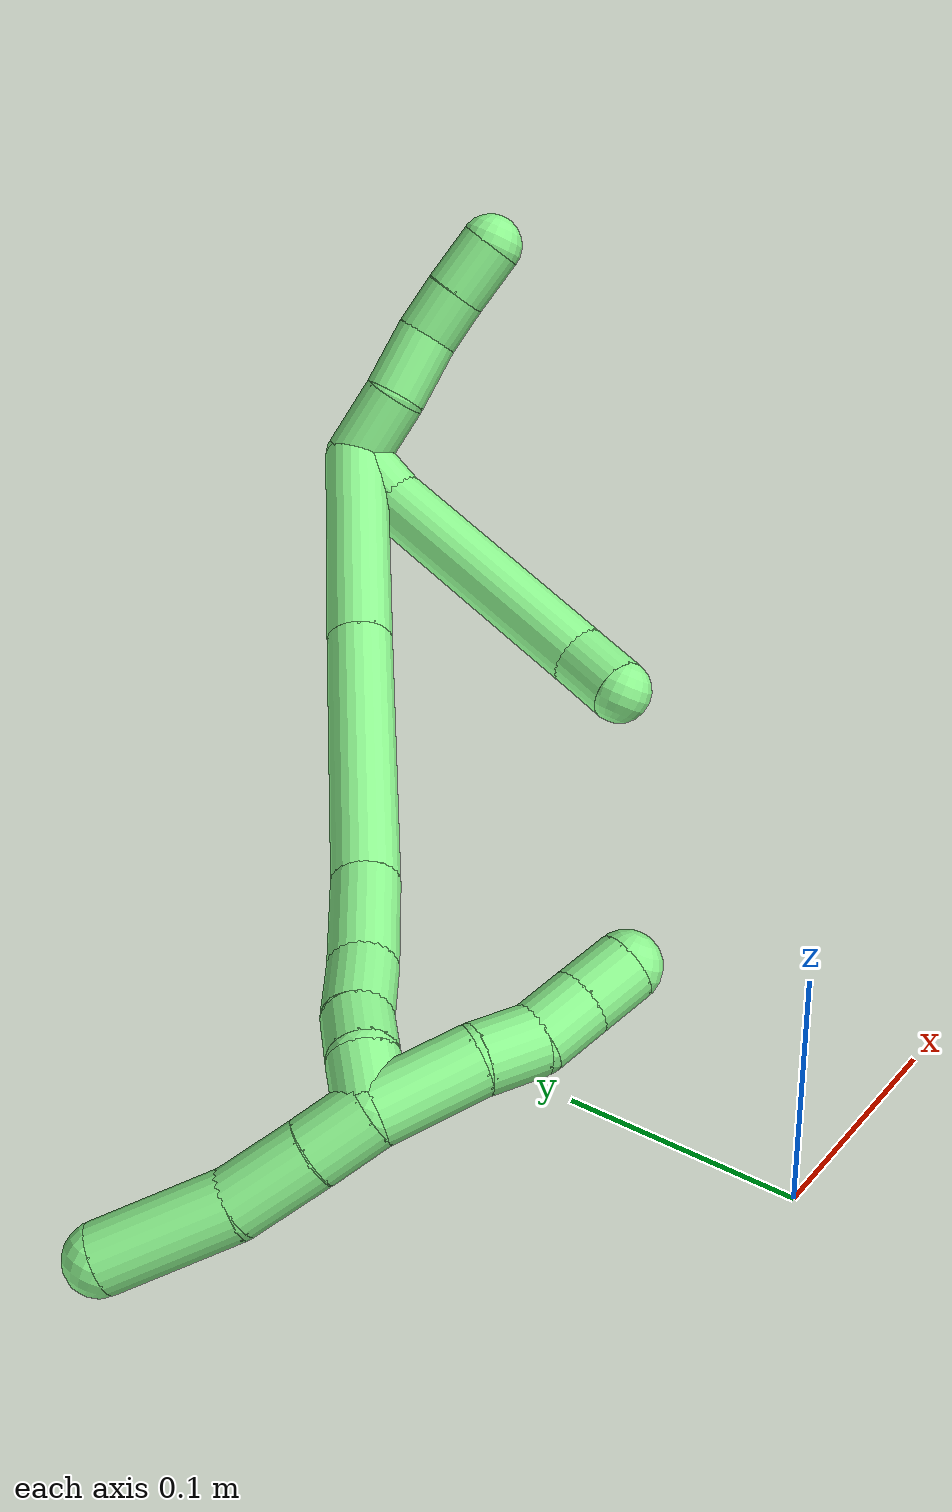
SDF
<sdf version="1.7">
 <world name="default">
  <model name="13">
   <static>0</static>
   <link name="13">
    <collision name="collision-cylinder-e_1_2_8">
     <pose>0.003134 -0.010795 -0.004811 1.98999 0.259227 0.396294</pose>
     <geometry><cylinder><radius>0.0125</radius><length>0.024454</length></cylinder></geometry>
     <surface>
      <friction><ode><mu>1.16</mu><mu2>1.16</mu2><slip1>0</slip1><slip2>0</slip2></ode></friction>
      <contact><ode><kp>1e+06</kp><kd>1</kd><max_vel>0</max_vel><min_depth>0.001</min_depth></ode></contact>
     </surface>
    </collision>
    <visual name="visual-cylinder-e_1_2_8">
     <pose>0.003134 -0.010795 -0.004811 1.98999 0.259227 0.396294</pose>
     <geometry><cylinder><radius>0.0125</radius><length>0.024454</length></cylinder></geometry>
     <material><ambient>0.564706 0.984314 0.572549 1</ambient></material>
    </visual>
    <collision name="collision-cylinder-e_2_8_9">
     <pose>0.015733 -0.069534 -0.021669 1.81699 0.18916 0.242111</pose>
     <geometry><cylinder><radius>0.0125</radius><length>0.100663</length></cylinder></geometry>
     <surface>
      <friction><ode><mu>1.16</mu><mu2>1.16</mu2><slip1>0</slip1><slip2>0</slip2></ode></friction>
      <contact><ode><kp>1e+06</kp><kd>1</kd><max_vel>0</max_vel><min_depth>0.001</min_depth></ode></contact>
     </surface>
    </collision>
    <visual name="visual-cylinder-e_2_8_9">
     <pose>0.015733 -0.069534 -0.021669 1.81699 0.18916 0.242111</pose>
     <geometry><cylinder><radius>0.0125</radius><length>0.100663</length></cylinder></geometry>
     <material><ambient>0.564706 0.984314 0.572549 1</ambient></material>
    </visual>
    <collision name="collision-cylinder-e_3_9_6">
     <pose>0.023905 -0.129644 -0.035969 1.75388 -0.104016 -0.124993</pose>
     <geometry><cylinder><radius>0.0125</radius><length>0.024882</length></cylinder></geometry>
     <surface>
      <friction><ode><mu>1.16</mu><mu2>1.16</mu2><slip1>0</slip1><slip2>0</slip2></ode></friction>
      <contact><ode><kp>1e+06</kp><kd>1</kd><max_vel>0</max_vel><min_depth>0.001</min_depth></ode></contact>
     </surface>
    </collision>
    <visual name="visual-cylinder-e_3_9_6">
     <pose>0.023905 -0.129644 -0.035969 1.75388 -0.104016 -0.124993</pose>
     <geometry><cylinder><radius>0.0125</radius><length>0.024882</length></cylinder></geometry>
     <material><ambient>0.564706 0.984314 0.572549 1</ambient></material>
    </visual>
    <collision name="collision-cylinder-e_1_2_10">
     <pose>0.000316 -0.002617 0.014171 0.182641 0.021891 0.002005</pose>
     <geometry><cylinder><radius>0.0125</radius><length>0.028829</length></cylinder></geometry>
     <surface>
      <friction><ode><mu>1.16</mu><mu2>1.16</mu2><slip1>0</slip1><slip2>0</slip2></ode></friction>
      <contact><ode><kp>1e+06</kp><kd>1</kd><max_vel>0</max_vel><min_depth>0.001</min_depth></ode></contact>
     </surface>
    </collision>
    <visual name="visual-cylinder-e_1_2_10">
     <pose>0.000316 -0.002617 0.014171 0.182641 0.021891 0.002005</pose>
     <geometry><cylinder><radius>0.0125</radius><length>0.028829</length></cylinder></geometry>
     <material><ambient>0.564706 0.984314 0.572549 1</ambient></material>
    </visual>
    <collision name="collision-cylinder-e_2_10_11">
     <pose>0.002662 -0.005194 0.041764 -0.003077 0.150171 -0.000231</pose>
     <geometry><cylinder><radius>0.0125</radius><length>0.027148</length></cylinder></geometry>
     <surface>
      <friction><ode><mu>1.16</mu><mu2>1.16</mu2><slip1>0</slip1><slip2>0</slip2></ode></friction>
      <contact><ode><kp>1e+06</kp><kd>1</kd><max_vel>0</max_vel><min_depth>0.001</min_depth></ode></contact>
     </surface>
    </collision>
    <visual name="visual-cylinder-e_2_10_11">
     <pose>0.002662 -0.005194 0.041764 -0.003077 0.150171 -0.000231</pose>
     <geometry><cylinder><radius>0.0125</radius><length>0.027148</length></cylinder></geometry>
     <material><ambient>0.564706 0.984314 0.572549 1</ambient></material>
    </visual>
    <collision name="collision-cylinder-e_3_11_12">
     <pose>0.00525 -0.007123 0.065199 0.194325 0.054535 0.005317</pose>
     <geometry><cylinder><radius>0.0125</radius><length>0.020442</length></cylinder></geometry>
     <surface>
      <friction><ode><mu>1.16</mu><mu2>1.16</mu2><slip1>0</slip1><slip2>0</slip2></ode></friction>
      <contact><ode><kp>1e+06</kp><kd>1</kd><max_vel>0</max_vel><min_depth>0.001</min_depth></ode></contact>
     </surface>
    </collision>
    <visual name="visual-cylinder-e_3_11_12">
     <pose>0.00525 -0.007123 0.065199 0.194325 0.054535 0.005317</pose>
     <geometry><cylinder><radius>0.0125</radius><length>0.020442</length></cylinder></geometry>
     <material><ambient>0.564706 0.984314 0.572549 1</ambient></material>
    </visual>
    <collision name="collision-cylinder-e_4_12_5">
     <pose>0.006797 -0.011704 0.086668 0.224009 0.084065 0.009461</pose>
     <geometry><cylinder><radius>0.0125</radius><length>0.023581</length></cylinder></geometry>
     <surface>
      <friction><ode><mu>1.16</mu><mu2>1.16</mu2><slip1>0</slip1><slip2>0</slip2></ode></friction>
      <contact><ode><kp>1e+06</kp><kd>1</kd><max_vel>0</max_vel><min_depth>0.001</min_depth></ode></contact>
     </surface>
    </collision>
    <visual name="visual-cylinder-e_4_12_5">
     <pose>0.006797 -0.011704 0.086668 0.224009 0.084065 0.009461</pose>
     <geometry><cylinder><radius>0.0125</radius><length>0.023581</length></cylinder></geometry>
     <material><ambient>0.564706 0.984314 0.572549 1</ambient></material>
    </visual>
    <collision name="collision-cylinder-e_1_2_13">
     <pose>-0.015841 -0.029957 -0.030121 2.35891 -0.356911 -0.824221</pose>
     <geometry><cylinder><radius>0.0125</radius><length>0.090678</length></cylinder></geometry>
     <surface>
      <friction><ode><mu>1.16</mu><mu2>1.16</mu2><slip1>0</slip1><slip2>0</slip2></ode></friction>
      <contact><ode><kp>1e+06</kp><kd>1</kd><max_vel>0</max_vel><min_depth>0.001</min_depth></ode></contact>
     </surface>
    </collision>
    <visual name="visual-cylinder-e_1_2_13">
     <pose>-0.015841 -0.029957 -0.030121 2.35891 -0.356911 -0.824221</pose>
     <geometry><cylinder><radius>0.0125</radius><length>0.090678</length></cylinder></geometry>
     <material><ambient>0.564706 0.984314 0.572549 1</ambient></material>
    </visual>
    <collision name="collision-cylinder-e_2_13_14">
     <pose>-0.049624 -0.094639 -0.094904 2.35529 -0.350592 -0.807203</pose>
     <geometry><cylinder><radius>0.0125</radius><length>0.104483</length></cylinder></geometry>
     <surface>
      <friction><ode><mu>1.16</mu><mu2>1.16</mu2><slip1>0</slip1><slip2>0</slip2></ode></friction>
      <contact><ode><kp>1e+06</kp><kd>1</kd><max_vel>0</max_vel><min_depth>0.001</min_depth></ode></contact>
     </surface>
    </collision>
    <visual name="visual-cylinder-e_2_13_14">
     <pose>-0.049624 -0.094639 -0.094904 2.35529 -0.350592 -0.807203</pose>
     <geometry><cylinder><radius>0.0125</radius><length>0.104483</length></cylinder></geometry>
     <material><ambient>0.564706 0.984314 0.572549 1</ambient></material>
    </visual>
    <collision name="collision-cylinder-e_3_14_15">
     <pose>-0.077744 -0.142457 -0.13988 2.23804 -0.548186 -1.05032</pose>
     <geometry><cylinder><radius>0.0125</radius><length>0.039059</length></cylinder></geometry>
     <surface>
      <friction><ode><mu>1.16</mu><mu2>1.16</mu2><slip1>0</slip1><slip2>0</slip2></ode></friction>
      <contact><ode><kp>1e+06</kp><kd>1</kd><max_vel>0</max_vel><min_depth>0.001</min_depth></ode></contact>
     </surface>
    </collision>
    <visual name="visual-cylinder-e_3_14_15">
     <pose>-0.077744 -0.142457 -0.13988 2.23804 -0.548186 -1.05032</pose>
     <geometry><cylinder><radius>0.0125</radius><length>0.039059</length></cylinder></geometry>
     <material><ambient>0.564706 0.984314 0.572549 1</ambient></material>
    </visual>
    <collision name="collision-cylinder-e_4_15_16">
     <pose>-0.096219 -0.163786 -0.155554 2.1477 -0.701232 -1.1866</pose>
     <geometry><cylinder><radius>0.0125</radius><length>0.025721</length></cylinder></geometry>
     <surface>
      <friction><ode><mu>1.16</mu><mu2>1.16</mu2><slip1>0</slip1><slip2>0</slip2></ode></friction>
      <contact><ode><kp>1e+06</kp><kd>1</kd><max_vel>0</max_vel><min_depth>0.001</min_depth></ode></contact>
     </surface>
    </collision>
    <visual name="visual-cylinder-e_4_15_16">
     <pose>-0.096219 -0.163786 -0.155554 2.1477 -0.701232 -1.1866</pose>
     <geometry><cylinder><radius>0.0125</radius><length>0.025721</length></cylinder></geometry>
     <material><ambient>0.564706 0.984314 0.572549 1</ambient></material>
    </visual>
    <collision name="collision-cylinder-e_5_16_17">
     <pose>-0.110245 -0.179615 -0.164051 1.96264 -0.608971 -0.878535</pose>
     <geometry><cylinder><radius>0.0125</radius><length>0.020031</length></cylinder></geometry>
     <surface>
      <friction><ode><mu>1.16</mu><mu2>1.16</mu2><slip1>0</slip1><slip2>0</slip2></ode></friction>
      <contact><ode><kp>1e+06</kp><kd>1</kd><max_vel>0</max_vel><min_depth>0.001</min_depth></ode></contact>
     </surface>
    </collision>
    <visual name="visual-cylinder-e_5_16_17">
     <pose>-0.110245 -0.179615 -0.164051 1.96264 -0.608971 -0.878535</pose>
     <geometry><cylinder><radius>0.0125</radius><length>0.020031</length></cylinder></geometry>
     <material><ambient>0.564706 0.984314 0.572549 1</ambient></material>
    </visual>
    <collision name="collision-cylinder-e_6_17_1">
     <pose>-0.119696 -0.19495 -0.172332 2.15719 -0.380777 -0.690067</pose>
     <geometry><cylinder><radius>0.0125</radius><length>0.020027</length></cylinder></geometry>
     <surface>
      <friction><ode><mu>1.16</mu><mu2>1.16</mu2><slip1>0</slip1><slip2>0</slip2></ode></friction>
      <contact><ode><kp>1e+06</kp><kd>1</kd><max_vel>0</max_vel><min_depth>0.001</min_depth></ode></contact>
     </surface>
    </collision>
    <visual name="visual-cylinder-e_6_17_1">
     <pose>-0.119696 -0.19495 -0.172332 2.15719 -0.380777 -0.690067</pose>
     <geometry><cylinder><radius>0.0125</radius><length>0.020027</length></cylinder></geometry>
     <material><ambient>0.564706 0.984314 0.572549 1</ambient></material>
    </visual>
    <collision name="collision-cylinder-e_1_1_18">
     <pose>-0.111534 -0.209797 -0.164723 0.508206 0.683229 0.184165</pose>
     <geometry><cylinder><radius>0.0125</radius><length>0.037648</length></cylinder></geometry>
     <surface>
      <friction><ode><mu>1.16</mu><mu2>1.16</mu2><slip1>0</slip1><slip2>0</slip2></ode></friction>
      <contact><ode><kp>1e+06</kp><kd>1</kd><max_vel>0</max_vel><min_depth>0.001</min_depth></ode></contact>
     </surface>
    </collision>
    <visual name="visual-cylinder-e_1_1_18">
     <pose>-0.111534 -0.209797 -0.164723 0.508206 0.683229 0.184165</pose>
     <geometry><cylinder><radius>0.0125</radius><length>0.037648</length></cylinder></geometry>
     <material><ambient>0.564706 0.984314 0.572549 1</ambient></material>
    </visual>
    <collision name="collision-cylinder-e_2_18_19">
     <pose>-0.091415 -0.22081 -0.146266 0.600741 0.872346 0.286769</pose>
     <geometry><cylinder><radius>0.0125</radius><length>0.021505</length></cylinder></geometry>
     <surface>
      <friction><ode><mu>1.16</mu><mu2>1.16</mu2><slip1>0</slip1><slip2>0</slip2></ode></friction>
      <contact><ode><kp>1e+06</kp><kd>1</kd><max_vel>0</max_vel><min_depth>0.001</min_depth></ode></contact>
     </surface>
    </collision>
    <visual name="visual-cylinder-e_2_18_19">
     <pose>-0.091415 -0.22081 -0.146266 0.600741 0.872346 0.286769</pose>
     <geometry><cylinder><radius>0.0125</radius><length>0.021505</length></cylinder></geometry>
     <material><ambient>0.564706 0.984314 0.572549 1</ambient></material>
    </visual>
    <collision name="collision-cylinder-e_3_19_20">
     <pose>-0.076307 -0.226083 -0.133093 0.180746 0.73578 0.069828</pose>
     <geometry><cylinder><radius>0.0125</radius><length>0.020483</length></cylinder></geometry>
     <surface>
      <friction><ode><mu>1.16</mu><mu2>1.16</mu2><slip1>0</slip1><slip2>0</slip2></ode></friction>
      <contact><ode><kp>1e+06</kp><kd>1</kd><max_vel>0</max_vel><min_depth>0.001</min_depth></ode></contact>
     </surface>
    </collision>
    <visual name="visual-cylinder-e_3_19_20">
     <pose>-0.076307 -0.226083 -0.133093 0.180746 0.73578 0.069828</pose>
     <geometry><cylinder><radius>0.0125</radius><length>0.020483</length></cylinder></geometry>
     <material><ambient>0.564706 0.984314 0.572549 1</ambient></material>
    </visual>
    <collision name="collision-cylinder-e_4_20_4">
     <pose>-0.062872 -0.229062 -0.118008 0.208885 0.700236 0.076518</pose>
     <geometry><cylinder><radius>0.0125</radius><length>0.020364</length></cylinder></geometry>
     <surface>
      <friction><ode><mu>1.16</mu><mu2>1.16</mu2><slip1>0</slip1><slip2>0</slip2></ode></friction>
      <contact><ode><kp>1e+06</kp><kd>1</kd><max_vel>0</max_vel><min_depth>0.001</min_depth></ode></contact>
     </surface>
    </collision>
    <visual name="visual-cylinder-e_4_20_4">
     <pose>-0.062872 -0.229062 -0.118008 0.208885 0.700236 0.076518</pose>
     <geometry><cylinder><radius>0.0125</radius><length>0.020364</length></cylinder></geometry>
     <material><ambient>0.564706 0.984314 0.572549 1</ambient></material>
    </visual>
    <collision name="collision-cylinder-e_1_1_21">
     <pose>-0.127578 -0.198121 -0.187211 -2.70249 -0.369111 1.39329</pose>
     <geometry><cylinder><radius>0.0125</radius><length>0.023062</length></cylinder></geometry>
     <surface>
      <friction><ode><mu>1.16</mu><mu2>1.16</mu2><slip1>0</slip1><slip2>0</slip2></ode></friction>
      <contact><ode><kp>1e+06</kp><kd>1</kd><max_vel>0</max_vel><min_depth>0.001</min_depth></ode></contact>
     </surface>
    </collision>
    <visual name="visual-cylinder-e_1_1_21">
     <pose>-0.127578 -0.198121 -0.187211 -2.70249 -0.369111 1.39329</pose>
     <geometry><cylinder><radius>0.0125</radius><length>0.023062</length></cylinder></geometry>
     <material><ambient>0.564706 0.984314 0.572549 1</ambient></material>
    </visual>
    <collision name="collision-cylinder-e_2_21_22">
     <pose>-0.136547 -0.187034 -0.209595 -2.66597 -0.325907 1.19198</pose>
     <geometry><cylinder><radius>0.0125</radius><length>0.030041</length></cylinder></geometry>
     <surface>
      <friction><ode><mu>1.16</mu><mu2>1.16</mu2><slip1>0</slip1><slip2>0</slip2></ode></friction>
      <contact><ode><kp>1e+06</kp><kd>1</kd><max_vel>0</max_vel><min_depth>0.001</min_depth></ode></contact>
     </surface>
    </collision>
    <visual name="visual-cylinder-e_2_21_22">
     <pose>-0.136547 -0.187034 -0.209595 -2.66597 -0.325907 1.19198</pose>
     <geometry><cylinder><radius>0.0125</radius><length>0.030041</length></cylinder></geometry>
     <material><ambient>0.564706 0.984314 0.572549 1</ambient></material>
    </visual>
    <collision name="collision-cylinder-e_3_22_3">
     <pose>-0.150162 -0.167079 -0.239324 -2.47487 -0.385004 1.02535</pose>
     <geometry><cylinder><radius>0.0125</radius><length>0.046897</length></cylinder></geometry>
     <surface>
      <friction><ode><mu>1.16</mu><mu2>1.16</mu2><slip1>0</slip1><slip2>0</slip2></ode></friction>
      <contact><ode><kp>1e+06</kp><kd>1</kd><max_vel>0</max_vel><min_depth>0.001</min_depth></ode></contact>
     </surface>
    </collision>
    <visual name="visual-cylinder-e_3_22_3">
     <pose>-0.150162 -0.167079 -0.239324 -2.47487 -0.385004 1.02535</pose>
     <geometry><cylinder><radius>0.0125</radius><length>0.046897</length></cylinder></geometry>
     <material><ambient>0.564706 0.984314 0.572549 1</ambient></material>
    </visual>
    <collision name="collision-sphere-3">
     <pose>-0.158969 -0.153639 -0.256402 0 -0 0</pose>
     <geometry><sphere><radius>0.0125</radius></sphere></geometry>
     <surface>
      <friction><ode><mu>1.16</mu><mu2>1.16</mu2><slip1>0</slip1><slip2>0</slip2></ode></friction>
      <contact><ode><kp>1e+06</kp><kd>1</kd><max_vel>0</max_vel><min_depth>0.001</min_depth></ode></contact>
     </surface>
    </collision>
    <visual name="visual-sphere-3">
     <pose>-0.158969 -0.153639 -0.256402 0 -0 0</pose>
     <geometry><sphere><radius>0.0125</radius></sphere></geometry>
     <material><ambient>0.564706 0.984314 0.572549 1</ambient></material>
    </visual>
    <collision name="collision-sphere-22">
     <pose>-0.141356 -0.180518 -0.222246 0 -0 0</pose>
     <geometry><sphere><radius>0.0125</radius></sphere></geometry>
     <surface>
      <friction><ode><mu>1.16</mu><mu2>1.16</mu2><slip1>0</slip1><slip2>0</slip2></ode></friction>
      <contact><ode><kp>1e+06</kp><kd>1</kd><max_vel>0</max_vel><min_depth>0.001</min_depth></ode></contact>
     </surface>
    </collision>
    <visual name="visual-sphere-22">
     <pose>-0.141356 -0.180518 -0.222246 0 -0 0</pose>
     <geometry><sphere><radius>0.0125</radius></sphere></geometry>
     <material><ambient>0.564706 0.984314 0.572549 1</ambient></material>
    </visual>
    <collision name="collision-sphere-21">
     <pose>-0.131738 -0.193549 -0.196945 0 -0 0</pose>
     <geometry><sphere><radius>0.0125</radius></sphere></geometry>
     <surface>
      <friction><ode><mu>1.16</mu><mu2>1.16</mu2><slip1>0</slip1><slip2>0</slip2></ode></friction>
      <contact><ode><kp>1e+06</kp><kd>1</kd><max_vel>0</max_vel><min_depth>0.001</min_depth></ode></contact>
     </surface>
    </collision>
    <visual name="visual-sphere-21">
     <pose>-0.131738 -0.193549 -0.196945 0 -0 0</pose>
     <geometry><sphere><radius>0.0125</radius></sphere></geometry>
     <material><ambient>0.564706 0.984314 0.572549 1</ambient></material>
    </visual>
    <collision name="collision-sphere-4">
     <pose>-0.056311 -0.230677 -0.110391 0 -0 0</pose>
     <geometry><sphere><radius>0.0125</radius></sphere></geometry>
     <surface>
      <friction><ode><mu>1.16</mu><mu2>1.16</mu2><slip1>0</slip1><slip2>0</slip2></ode></friction>
      <contact><ode><kp>1e+06</kp><kd>1</kd><max_vel>0</max_vel><min_depth>0.001</min_depth></ode></contact>
     </surface>
    </collision>
    <visual name="visual-sphere-4">
     <pose>-0.056311 -0.230677 -0.110391 0 -0 0</pose>
     <geometry><sphere><radius>0.0125</radius></sphere></geometry>
     <material><ambient>0.564706 0.984314 0.572549 1</ambient></material>
    </visual>
    <collision name="collision-sphere-20">
     <pose>-0.069433 -0.227447 -0.125625 0 -0 0</pose>
     <geometry><sphere><radius>0.0125</radius></sphere></geometry>
     <surface>
      <friction><ode><mu>1.16</mu><mu2>1.16</mu2><slip1>0</slip1><slip2>0</slip2></ode></friction>
      <contact><ode><kp>1e+06</kp><kd>1</kd><max_vel>0</max_vel><min_depth>0.001</min_depth></ode></contact>
     </surface>
    </collision>
    <visual name="visual-sphere-20">
     <pose>-0.069433 -0.227447 -0.125625 0 -0 0</pose>
     <geometry><sphere><radius>0.0125</radius></sphere></geometry>
     <material><ambient>0.564706 0.984314 0.572549 1</ambient></material>
    </visual>
    <collision name="collision-sphere-11">
     <pose>0.004693 -0.005152 0.055185 0 -0 0</pose>
     <geometry><sphere><radius>0.0125</radius></sphere></geometry>
     <surface>
      <friction><ode><mu>1.16</mu><mu2>1.16</mu2><slip1>0</slip1><slip2>0</slip2></ode></friction>
      <contact><ode><kp>1e+06</kp><kd>1</kd><max_vel>0</max_vel><min_depth>0.001</min_depth></ode></contact>
     </surface>
    </collision>
    <visual name="visual-sphere-11">
     <pose>0.004693 -0.005152 0.055185 0 -0 0</pose>
     <geometry><sphere><radius>0.0125</radius></sphere></geometry>
     <material><ambient>0.564706 0.984314 0.572549 1</ambient></material>
    </visual>
    <collision name="collision-sphere-10">
     <pose>0.000631 -0.005235 0.028343 0 -0 0</pose>
     <geometry><sphere><radius>0.0125</radius></sphere></geometry>
     <surface>
      <friction><ode><mu>1.16</mu><mu2>1.16</mu2><slip1>0</slip1><slip2>0</slip2></ode></friction>
      <contact><ode><kp>1e+06</kp><kd>1</kd><max_vel>0</max_vel><min_depth>0.001</min_depth></ode></contact>
     </surface>
    </collision>
    <visual name="visual-sphere-10">
     <pose>0.000631 -0.005235 0.028343 0 -0 0</pose>
     <geometry><sphere><radius>0.0125</radius></sphere></geometry>
     <material><ambient>0.564706 0.984314 0.572549 1</ambient></material>
    </visual>
    <collision name="collision-sphere-6">
     <pose>0.022613 -0.141812 -0.038222 0 -0 0</pose>
     <geometry><sphere><radius>0.0125</radius></sphere></geometry>
     <surface>
      <friction><ode><mu>1.16</mu><mu2>1.16</mu2><slip1>0</slip1><slip2>0</slip2></ode></friction>
      <contact><ode><kp>1e+06</kp><kd>1</kd><max_vel>0</max_vel><min_depth>0.001</min_depth></ode></contact>
     </surface>
    </collision>
    <visual name="visual-sphere-6">
     <pose>0.022613 -0.141812 -0.038222 0 -0 0</pose>
     <geometry><sphere><radius>0.0125</radius></sphere></geometry>
     <material><ambient>0.564706 0.984314 0.572549 1</ambient></material>
    </visual>
    <collision name="collision-sphere-9">
     <pose>0.025197 -0.117477 -0.033716 0 -0 0</pose>
     <geometry><sphere><radius>0.0125</radius></sphere></geometry>
     <surface>
      <friction><ode><mu>1.16</mu><mu2>1.16</mu2><slip1>0</slip1><slip2>0</slip2></ode></friction>
      <contact><ode><kp>1e+06</kp><kd>1</kd><max_vel>0</max_vel><min_depth>0.001</min_depth></ode></contact>
     </surface>
    </collision>
    <visual name="visual-sphere-9">
     <pose>0.025197 -0.117477 -0.033716 0 -0 0</pose>
     <geometry><sphere><radius>0.0125</radius></sphere></geometry>
     <material><ambient>0.564706 0.984314 0.572549 1</ambient></material>
    </visual>
    <collision name="collision-sphere-2">
     <geometry><sphere><radius>0.0125</radius></sphere></geometry>
     <surface>
      <friction><ode><mu>1.16</mu><mu2>1.16</mu2><slip1>0</slip1><slip2>0</slip2></ode></friction>
      <contact><ode><kp>1e+06</kp><kd>1</kd><max_vel>0</max_vel><min_depth>0.001</min_depth></ode></contact>
     </surface>
    </collision>
    <visual name="visual-sphere-2">
     <geometry><sphere><radius>0.0125</radius></sphere></geometry>
     <material><ambient>0.564706 0.984314 0.572549 1</ambient></material>
    </visual>
    <collision name="collision-sphere-19">
     <pose>-0.083181 -0.224718 -0.140562 0 -0 0</pose>
     <geometry><sphere><radius>0.0125</radius></sphere></geometry>
     <surface>
      <friction><ode><mu>1.16</mu><mu2>1.16</mu2><slip1>0</slip1><slip2>0</slip2></ode></friction>
      <contact><ode><kp>1e+06</kp><kd>1</kd><max_vel>0</max_vel><min_depth>0.001</min_depth></ode></contact>
     </surface>
    </collision>
    <visual name="visual-sphere-19">
     <pose>-0.083181 -0.224718 -0.140562 0 -0 0</pose>
     <geometry><sphere><radius>0.0125</radius></sphere></geometry>
     <material><ambient>0.564706 0.984314 0.572549 1</ambient></material>
    </visual>
    <collision name="collision-sphere-8">
     <pose>0.006268 -0.021591 -0.009621 0 -0 0</pose>
     <geometry><sphere><radius>0.0125</radius></sphere></geometry>
     <surface>
      <friction><ode><mu>1.16</mu><mu2>1.16</mu2><slip1>0</slip1><slip2>0</slip2></ode></friction>
      <contact><ode><kp>1e+06</kp><kd>1</kd><max_vel>0</max_vel><min_depth>0.001</min_depth></ode></contact>
     </surface>
    </collision>
    <visual name="visual-sphere-8">
     <pose>0.006268 -0.021591 -0.009621 0 -0 0</pose>
     <geometry><sphere><radius>0.0125</radius></sphere></geometry>
     <material><ambient>0.564706 0.984314 0.572549 1</ambient></material>
    </visual>
    <collision name="collision-sphere-12">
     <pose>0.005807 -0.009094 0.075213 0 -0 0</pose>
     <geometry><sphere><radius>0.0125</radius></sphere></geometry>
     <surface>
      <friction><ode><mu>1.16</mu><mu2>1.16</mu2><slip1>0</slip1><slip2>0</slip2></ode></friction>
      <contact><ode><kp>1e+06</kp><kd>1</kd><max_vel>0</max_vel><min_depth>0.001</min_depth></ode></contact>
     </surface>
    </collision>
    <visual name="visual-sphere-12">
     <pose>0.005807 -0.009094 0.075213 0 -0 0</pose>
     <geometry><sphere><radius>0.0125</radius></sphere></geometry>
     <material><ambient>0.564706 0.984314 0.572549 1</ambient></material>
    </visual>
    <collision name="collision-sphere-5">
     <pose>0.007787 -0.014314 0.098123 0 -0 0</pose>
     <geometry><sphere><radius>0.0125</radius></sphere></geometry>
     <surface>
      <friction><ode><mu>1.16</mu><mu2>1.16</mu2><slip1>0</slip1><slip2>0</slip2></ode></friction>
      <contact><ode><kp>1e+06</kp><kd>1</kd><max_vel>0</max_vel><min_depth>0.001</min_depth></ode></contact>
     </surface>
    </collision>
    <visual name="visual-sphere-5">
     <pose>0.007787 -0.014314 0.098123 0 -0 0</pose>
     <geometry><sphere><radius>0.0125</radius></sphere></geometry>
     <material><ambient>0.564706 0.984314 0.572549 1</ambient></material>
    </visual>
    <collision name="collision-sphere-13">
     <pose>-0.031681 -0.059915 -0.060242 0 -0 0</pose>
     <geometry><sphere><radius>0.0125</radius></sphere></geometry>
     <surface>
      <friction><ode><mu>1.16</mu><mu2>1.16</mu2><slip1>0</slip1><slip2>0</slip2></ode></friction>
      <contact><ode><kp>1e+06</kp><kd>1</kd><max_vel>0</max_vel><min_depth>0.001</min_depth></ode></contact>
     </surface>
    </collision>
    <visual name="visual-sphere-13">
     <pose>-0.031681 -0.059915 -0.060242 0 -0 0</pose>
     <geometry><sphere><radius>0.0125</radius></sphere></geometry>
     <material><ambient>0.564706 0.984314 0.572549 1</ambient></material>
    </visual>
    <collision name="collision-sphere-14">
     <pose>-0.067566 -0.129364 -0.129565 0 -0 0</pose>
     <geometry><sphere><radius>0.0125</radius></sphere></geometry>
     <surface>
      <friction><ode><mu>1.16</mu><mu2>1.16</mu2><slip1>0</slip1><slip2>0</slip2></ode></friction>
      <contact><ode><kp>1e+06</kp><kd>1</kd><max_vel>0</max_vel><min_depth>0.001</min_depth></ode></contact>
     </surface>
    </collision>
    <visual name="visual-sphere-14">
     <pose>-0.067566 -0.129364 -0.129565 0 -0 0</pose>
     <geometry><sphere><radius>0.0125</radius></sphere></geometry>
     <material><ambient>0.564706 0.984314 0.572549 1</ambient></material>
    </visual>
    <collision name="collision-sphere-15">
     <pose>-0.087922 -0.15555 -0.150195 0 -0 0</pose>
     <geometry><sphere><radius>0.0125</radius></sphere></geometry>
     <surface>
      <friction><ode><mu>1.16</mu><mu2>1.16</mu2><slip1>0</slip1><slip2>0</slip2></ode></friction>
      <contact><ode><kp>1e+06</kp><kd>1</kd><max_vel>0</max_vel><min_depth>0.001</min_depth></ode></contact>
     </surface>
    </collision>
    <visual name="visual-sphere-15">
     <pose>-0.087922 -0.15555 -0.150195 0 -0 0</pose>
     <geometry><sphere><radius>0.0125</radius></sphere></geometry>
     <material><ambient>0.564706 0.984314 0.572549 1</ambient></material>
    </visual>
    <collision name="collision-sphere-16">
     <pose>-0.104516 -0.172022 -0.160914 0 -0 0</pose>
     <geometry><sphere><radius>0.0125</radius></sphere></geometry>
     <surface>
      <friction><ode><mu>1.16</mu><mu2>1.16</mu2><slip1>0</slip1><slip2>0</slip2></ode></friction>
      <contact><ode><kp>1e+06</kp><kd>1</kd><max_vel>0</max_vel><min_depth>0.001</min_depth></ode></contact>
     </surface>
    </collision>
    <visual name="visual-sphere-16">
     <pose>-0.104516 -0.172022 -0.160914 0 -0 0</pose>
     <geometry><sphere><radius>0.0125</radius></sphere></geometry>
     <material><ambient>0.564706 0.984314 0.572549 1</ambient></material>
    </visual>
    <collision name="collision-sphere-17">
     <pose>-0.115974 -0.187207 -0.167188 0 -0 0</pose>
     <geometry><sphere><radius>0.0125</radius></sphere></geometry>
     <surface>
      <friction><ode><mu>1.16</mu><mu2>1.16</mu2><slip1>0</slip1><slip2>0</slip2></ode></friction>
      <contact><ode><kp>1e+06</kp><kd>1</kd><max_vel>0</max_vel><min_depth>0.001</min_depth></ode></contact>
     </surface>
    </collision>
    <visual name="visual-sphere-17">
     <pose>-0.115974 -0.187207 -0.167188 0 -0 0</pose>
     <geometry><sphere><radius>0.0125</radius></sphere></geometry>
     <material><ambient>0.564706 0.984314 0.572549 1</ambient></material>
    </visual>
    <collision name="collision-sphere-1">
     <pose>-0.123417 -0.202693 -0.177477 0 -0 0</pose>
     <geometry><sphere><radius>0.0125</radius></sphere></geometry>
     <surface>
      <friction><ode><mu>1.16</mu><mu2>1.16</mu2><slip1>0</slip1><slip2>0</slip2></ode></friction>
      <contact><ode><kp>1e+06</kp><kd>1</kd><max_vel>0</max_vel><min_depth>0.001</min_depth></ode></contact>
     </surface>
    </collision>
    <visual name="visual-sphere-1">
     <pose>-0.123417 -0.202693 -0.177477 0 -0 0</pose>
     <geometry><sphere><radius>0.0125</radius></sphere></geometry>
     <material><ambient>0.564706 0.984314 0.572549 1</ambient></material>
    </visual>
    <collision name="collision-sphere-18">
     <pose>-0.09965 -0.216901 -0.151969 0 -0 0</pose>
     <geometry><sphere><radius>0.0125</radius></sphere></geometry>
     <surface>
      <friction><ode><mu>1.16</mu><mu2>1.16</mu2><slip1>0</slip1><slip2>0</slip2></ode></friction>
      <contact><ode><kp>1e+06</kp><kd>1</kd><max_vel>0</max_vel><min_depth>0.001</min_depth></ode></contact>
     </surface>
    </collision>
    <visual name="visual-sphere-18">
     <pose>-0.09965 -0.216901 -0.151969 0 -0 0</pose>
     <geometry><sphere><radius>0.0125</radius></sphere></geometry>
     <material><ambient>0.564706 0.984314 0.572549 1</ambient></material>
    </visual>
    <inertial>
     <pose>-0.049638 -0.107969 -0.084584 0 -0 0</pose>
     <mass>0.75</mass>
     <inertia>
      <ixx>0.000134</ixx>
      <ixy>0</ixy>
      <ixz>0</ixz>
      <iyy>-0.000163</iyy>
      <iyz>0</iyz>
      <izz>0.000237</izz>
     </inertia>
    </inertial>
   </link>
   <pose>0.065401 0.249763 0.216712 0.126834 0.539768 -0.028167</pose>
  </model>
 </world>
</sdf>
